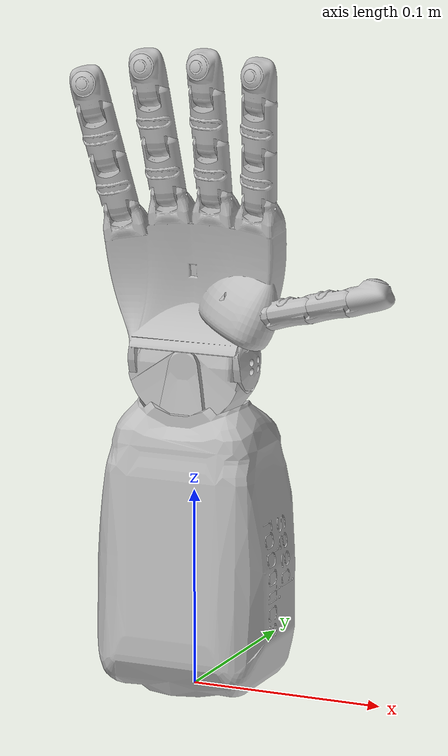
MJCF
<mujoco model="RH8DR">
  <compiler angle="radian" autolimits="true"/>
  <size/>
  <default/>
  <asset>
    <mesh name="base" file="base.stl" scale="0.001 0.001 0.001"/>
    <mesh name="forearm" file="forearm.stl" scale="0.001 0.001 0.001"/>
    <mesh name="palm axis" file="palm axis.stl" scale="0.001 0.001 0.001"/>
    <mesh name="palm assembly" file="palm assembly.stl" scale="0.001 0.001 0.001"/>
    <mesh name="phalanx" file="phalanx.stl" scale="0.001 0.001 0.001"/>
    <mesh name="tip" file="tip.stl" scale="0.001 0.001 0.001"/>
    <mesh name="thumb base" file="thumb base.stl" scale="0.001 0.001 0.001"/>
    <mesh name="thumb_phalanx" file="thumb_phalanx.stl" scale="0.001 0.001 0.001"/>
  </asset>
  <worldbody>
    <geom pos="0 0 0.0045" type="mesh" rgba="0.74902 0.74902 0.74902 1" mesh="base"/>
    <body name="forearm:1" pos="0 0 0.001" quat="0 0 -0.707107 0.707107">
      <inertial pos="1.87963e-07 -0.0656522 -0.00271352" quat="0.498346 0.501671 -0.501575 0.498397" mass="0.740385" diaginertia="0.00146215 0.00130925 0.000680264"/>
      <joint name="forearm:1--base:1" pos="0 0 0" axis="0 -1 0" range="-1.5708 1.5708" damping="0.1"/>
      <geom type="mesh" rgba="0.74902 0.74902 0.74902 1" mesh="forearm"/>
      <body name="palm_axis:1" pos="0 -0.165 -0.01275">
        <inertial pos="0 0.008585 0.0125" quat="0 0.707107 0 0.707107" mass="0.0509809" diaginertia="1.88432e-05 1.37535e-05 9.79681e-06"/>
        <joint name="palm_axis:1--forearm:1" pos="0 0 0" axis="0 0 1" range="-0.785398 0.785398" damping="0.1"/>
        <geom pos="0 0 0.0125" type="mesh" rgba="0.74902 0.74902 0.74902 1" mesh="palm axis"/>
        <body name="palm" pos="0.0265 0 0.0125" quat="0.764847 0.63682 0.022682 -0.094633">
          <inertial pos="-0.0428433 -0.00466111 0.0454719" quat="0.48276 0.542533 0.210306 0.654502" mass="0.0820994" diaginertia="9.95214e-05 8.17343e-05 3.63353e-05"/>
          <joint name="palm--palm_axis:1" pos="0 0 0" axis="-0.98106 -0.173648 0.0858319" range="-0.785398 0.785398" damping="0.1"/>
          <geom pos="-0.0586362 -0.00572413 0.0653212" type="mesh" rgba="0.74902 0.74902 0.74902 1" mesh="palm assembly"/>
          <body name="Index_Proximal" pos="-0.0482113 -0.0207166 0.0857786" quat="0 1 0 0">
            <inertial pos="-0.00506278 -0.000180346 -0.0109169" quat="0.709609 0.0289913 -0.0286909 0.703414" mass="0.00525864" diaginertia="5.65636e-07 5.33996e-07 1.82249e-07"/>
            <joint name="Index_Proximal--palm" pos="0 0 0" axis="-1 0 0" range="0 1.5708" damping="0.1"/>
            <geom pos="-0.00506263 -1.44878e-07 -0.0129367" type="mesh" rgba="0.74902 0.74902 0.74902 1" mesh="phalanx"/>
            <body name="Index_Middle" pos="6.24645e-05 0 -0.0258748">
              <inertial pos="-0.00506279 -0.000180375 -0.0109169" quat="0.709609 0.0289913 -0.0286909 0.703414" mass="0.00525864" diaginertia="5.65636e-07 5.33996e-07 1.82249e-07"/>
              <joint name="Index_Middle--Index_Proximal" pos="0 0 0" axis="-1 0 0" range="0 1.5708" damping="0.1"/>
              <geom pos="-0.00506242 0 -0.0129376" type="mesh" rgba="0.74902 0.74902 0.74902 1" mesh="phalanx"/>
              <body name="Index_Distal" pos="6.2463e-05 0 -0.0258748">
                <inertial pos="-0.00452224 -0.00262003 -0.0121245" quat="0.634633 -0.0915234 0.0968285 0.761242" mass="0.00650951" diaginertia="5.45458e-07 5.01126e-07 3.14326e-07"/>
                <joint name="Index_Distal--Index_Middle" pos="0 0 0" axis="-1 0 0" range="0 1.5708" damping="0.1"/>
                <geom pos="-0.00506253 0 4.01497e-07" type="mesh" rgba="0.74902 0.74902 0.74902 1" mesh="tip"/>
              </body>
            </body>
          </body>
          <body name="Small_Proximal" pos="0.0235505 -0.00577399 0.0699045" quat="-0.00757449 -0.976383 -0.173483 0.128543">
            <inertial pos="-0.00506278 -0.00018031 -0.0109171" quat="0.709609 0.0289913 -0.0286909 0.703414" mass="0.00525864" diaginertia="5.65636e-07 5.33996e-07 1.82249e-07"/>
            <joint name="Small_Proximal--palm" pos="0 0 0" axis="-1 0 0" range="0 1.5708" damping="0.1"/>
            <geom pos="-0.00506256 0 -0.0129378" type="mesh" rgba="0.74902 0.74902 0.74902 1" mesh="phalanx"/>
            <body name="Small_Middle" pos="6.24423e-05 0 -0.0258752">
              <inertial pos="-0.00506278 -0.00018031 -0.0109171" quat="0.709609 0.0289913 -0.0286909 0.703414" mass="0.00525864" diaginertia="5.65636e-07 5.33996e-07 1.82249e-07"/>
              <joint name="Small_Middle--Small_Proximal" pos="0 0 0" axis="-1 0 0" range="0 1.5708" damping="0.1"/>
              <geom pos="-0.00506255 0 -0.0129378" type="mesh" rgba="0.74902 0.74902 0.74902 1" mesh="phalanx"/>
              <body name="Small_Distal" pos="6.2445e-05 0 -0.0258753">
                <inertial pos="-0.00452232 -0.00262 -0.0121245" quat="0.634633 -0.0915234 0.0968285 0.761242" mass="0.00650951" diaginertia="5.45458e-07 5.01126e-07 3.14326e-07"/>
                <joint name="Small_Distal--Small_Middle" pos="0 0 0" axis="-1 0 0" range="0 1.5708" damping="0.1"/>
                <geom pos="-0.00506244 0 0" type="mesh" rgba="0.74902 0.74902 0.74902 1" mesh="tip"/>
              </body>
            </body>
          </body>
          <body name="Ring_Proximal" pos="0.000973217 -0.0139442 0.0805959" quat="-7.86943e-05 -0.987791 -0.129626 0.0864102">
            <inertial pos="-0.00506284 -0.000180314 -0.0109171" quat="0.709609 0.0289913 -0.0286909 0.703414" mass="0.00525864" diaginertia="5.65636e-07 5.33996e-07 1.82249e-07"/>
            <joint name="Ring_Proximal--palm" pos="0 0 0" axis="-1 0 0" range="0 1.5708" damping="0.1"/>
            <geom pos="-0.00506248 0 -0.0129378" type="mesh" rgba="0.74902 0.74902 0.74902 1" mesh="phalanx"/>
            <body name="Ring_Middle" pos="6.24428e-05 0 -0.0258755">
              <inertial pos="-0.00506274 -0.000180305 -0.0109171" quat="0.709609 0.0289913 -0.0286909 0.703414" mass="0.00525864" diaginertia="5.65636e-07 5.33996e-07 1.82249e-07"/>
              <joint name="Ring_Middle--Ring_Proximal" pos="0 0 0" axis="-1 0 0" range="0 1.5708" damping="0.1"/>
              <geom pos="-0.00506238 -1.10193e-07 -0.0129369" type="mesh" rgba="0.74902 0.74902 0.74902 1" mesh="phalanx"/>
              <body name="Ring_Distal" pos="6.25413e-05 0 -0.0258745">
                <inertial pos="-0.00452232 -0.00261989 -0.0121254" quat="0.634633 -0.0915234 0.0968285 0.761242" mass="0.00650951" diaginertia="5.45458e-07 5.01126e-07 3.14326e-07"/>
                <joint name="Ring_Distal--Ring_Middle" pos="0 0 0" axis="-1 0 0" range="0 1.5708" damping="0.1"/>
                <geom pos="-0.00506254 1.36101e-07 -7.35729e-07" type="mesh" rgba="0.74902 0.74902 0.74902 1" mesh="tip"/>
              </body>
            </body>
          </body>
          <body name="Thumb_axis" pos="-0.0403593 -0.0128548 0.0384218" quat="0.488081 0.532913 -0.239627 -0.648352">
            <inertial pos="7.36614e-07 -0.0127284 0.0077996" quat="0.90682 0.421512 -0.00114761 0.00208364" mass="0.00876232" diaginertia="7.9766e-07 7.76944e-07 4.56571e-07"/>
            <joint name="Thumb_axis--palm" pos="0 0 0" axis="0 -0.866025 0.5" range="0 1.5708" damping="0.1"/>
            <geom pos="-2.0491e-07 -0.0143541 0.0211785" type="mesh" rgba="0.74902 0.74902 0.74902 1" mesh="thumb base"/>
            <body name="Thumb_Methacarpal" pos="-0.00512514 -0.0143543 0.0211784" quat="0 -1 0 0">
              <inertial pos="0.00506187 -0.00020374 -0.0087338" quat="0.707662 0.0382635 -0.0379957 0.70449" mass="0.00441372" diaginertia="4.34031e-07 4.06754e-07 1.50155e-07"/>
              <joint name="Thumb_Methacarpal--Thumb_axis" pos="0 0 0" axis="-1 0 0" range="0 1.5708" damping="0.1"/>
              <geom pos="0.00506254 1.23613e-07 -0.010793" type="mesh" rgba="0.74902 0.74902 0.74902 1" mesh="thumb_phalanx"/>
              <body name="Thumb_Proximal" pos="-0.000562562 -2.35897e-07 -0.0215861">
                <inertial pos="0.00506186 -0.000203737 -0.0087338" quat="0.707662 0.0382635 -0.0379957 0.70449" mass="0.00441372" diaginertia="4.34031e-07 4.06754e-07 1.50155e-07"/>
                <joint name="Thumb_Proximal--Thumb_Methacarpal" pos="0 0 0" axis="-1 0 0" range="0 1.5708" damping="0.1"/>
                <geom pos="0.00506253 1.26601e-07 -0.010793" type="mesh" rgba="0.74902 0.74902 0.74902 1" mesh="thumb_phalanx"/>
                <body name="Thumb_Distal" pos="-6.23674e-05 6.16563e-07 -0.0215858">
                  <inertial pos="0.00560256 -0.00262057 -0.0121248" quat="0.634633 -0.0915234 0.0968285 0.761242" mass="0.00650951" diaginertia="5.45458e-07 5.01126e-07 3.14326e-07"/>
                  <joint name="Thumb_Distal--Thumb_Proximal" pos="0 0 0" axis="-1 0 0" range="0 1.5708" damping="0.1"/>
                  <geom pos="0.00506251 -1.31623e-07 0" type="mesh" rgba="0.74902 0.74902 0.74902 1" mesh="tip"/>
                </body>
              </body>
            </body>
          </body>
          <body name="Middle_Proximal" pos="-0.0230982 -0.0192207 0.084179" quat="0.00190282 -0.998097 -0.0435779 0.043578">
            <inertial pos="-0.00506279 -0.000180392 -0.0109167" quat="0.709609 0.0289913 -0.0286909 0.703414" mass="0.00525864" diaginertia="5.65636e-07 5.33996e-07 1.82249e-07"/>
            <joint name="Middle_Proximal--palm" pos="0 0 0" axis="-1 0 0" range="0 1.5708" damping="0.1"/>
            <geom pos="-0.00506247 0 -0.0129372" type="mesh" rgba="0.74902 0.74902 0.74902 1" mesh="phalanx"/>
            <body name="Middle_Middle" pos="6.24843e-05 -1.52847e-07 -0.0258742">
              <inertial pos="-0.00506283 -0.000180213 -0.0109177" quat="0.709609 0.0289913 -0.0286909 0.703414" mass="0.00525864" diaginertia="5.65636e-07 5.33996e-07 1.82249e-07"/>
              <joint name="Middle_Middle--Middle_Proximal" pos="0 0 0" axis="-1 0 0" range="0 1.5708" damping="0.1"/>
              <geom pos="-0.00506251 1.09878e-07 -0.0129382" type="mesh" rgba="0.74902 0.74902 0.74902 1" mesh="phalanx"/>
              <body name="Middle_Distal" pos="6.24995e-05 0 -0.0258752">
                <inertial pos="-0.00452227 -0.00261993 -0.0121249" quat="0.634633 -0.0915234 0.0968285 0.761242" mass="0.00650951" diaginertia="5.45458e-07 5.01126e-07 3.14326e-07"/>
                <joint name="Middle_Distal--Middle_Middle" pos="0 0 0" axis="-1 0 0" range="0 1.5708" damping="0.1"/>
                <geom pos="-0.00506248 0 -6.09795e-07" type="mesh" rgba="0.74902 0.74902 0.74902 1" mesh="tip"/>
              </body>
            </body>
          </body>
        </body>
      </body>
    </body>
  </worldbody>
</mujoco>
